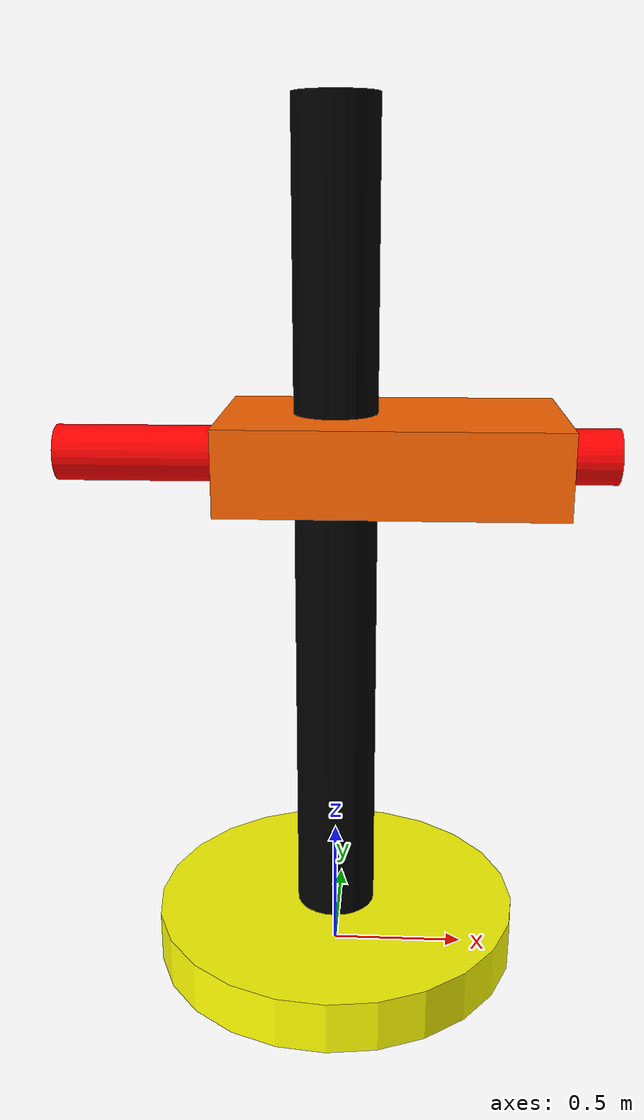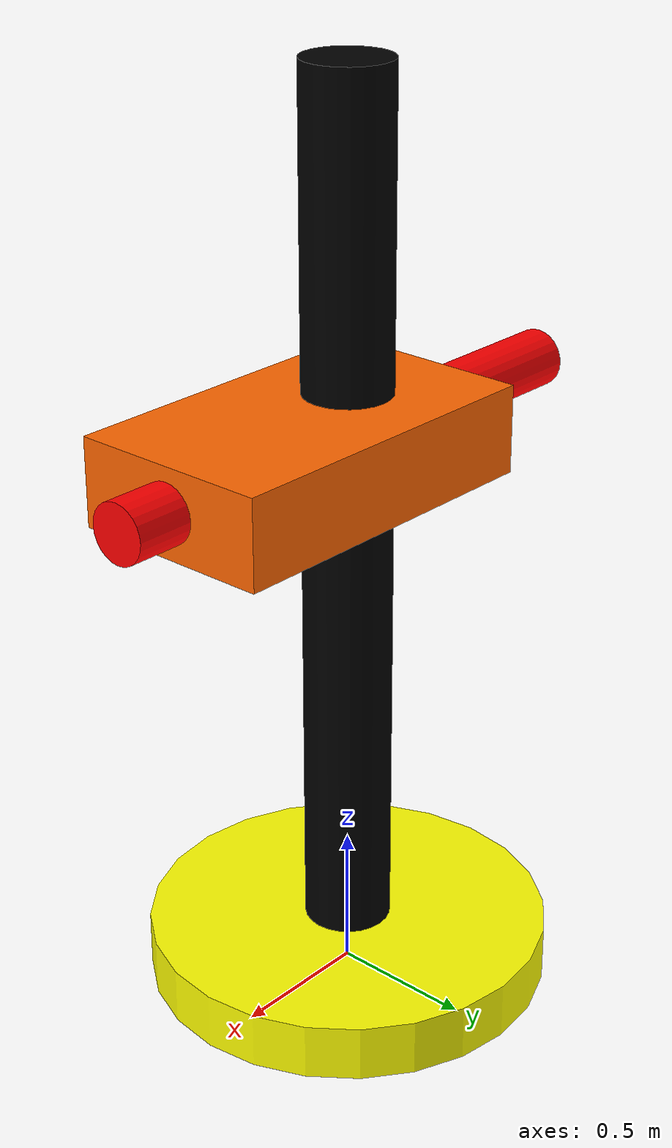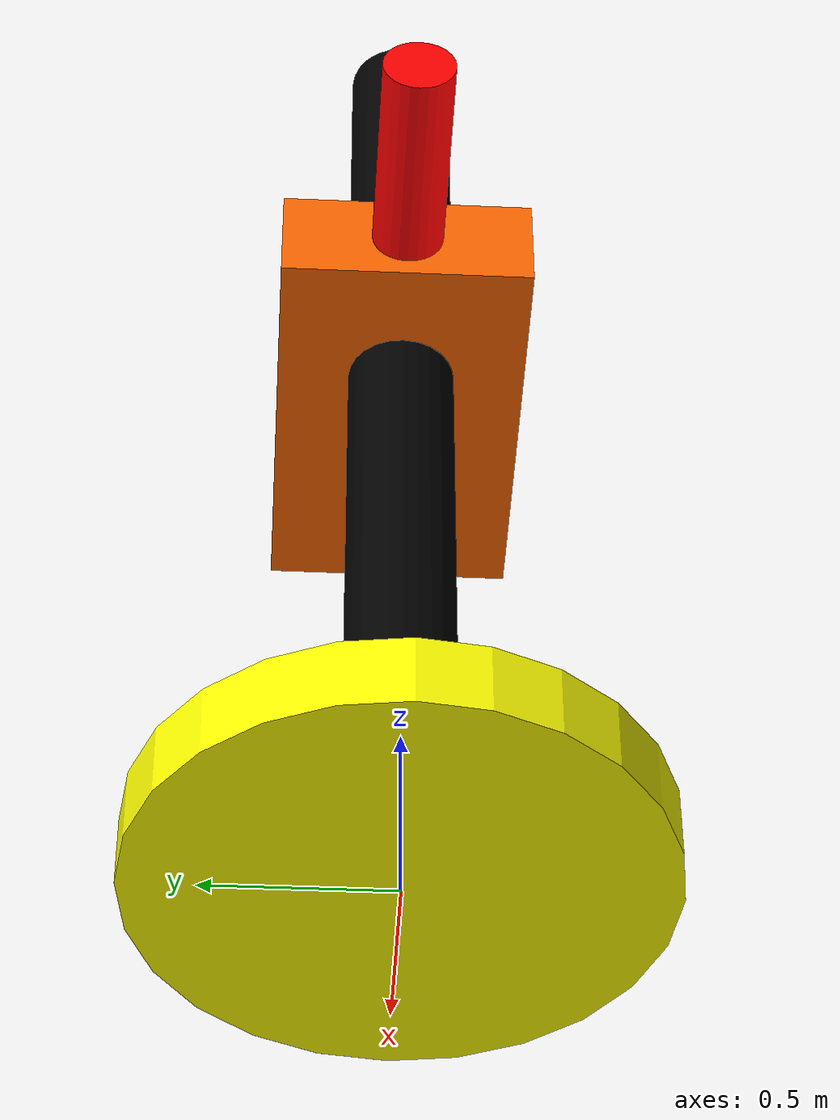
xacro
<?xml version="1.0"?>
<!-- Revolute-Revolute Manipulator -->
<robot name="rrbot" xmlns:xacro="http://www.ros.org/wiki/xacro">

  <!-- Import all Gazebo-customization elements, including Gazebo colors -->
  <xacro:include filename="$(find rrbot_description)/urdf/rrbot.gazebo" />

  <!-- Used for fixing robot to Gazebo 'base_link' -->
  <material name="black">
    <color rgba="0.0 0.0 0.0 1.0"/>
  </material>
  <material name="orange">
    <color rgba="1.0 0.4 0.0 1.0"/>
  </material>

  <link name="base">
    <visual>
      <geometry>
        <cylinder length="0.2" radius="0.7"/>
      </geometry>
      <origin rpy="0 0 0" xyz="0 0 0.1"/>
      <material name="yellow">
        <color rgba="1 1 0 1"/>
      </material>
    </visual>
    <collision>
      <geometry>
        <cylinder length="0.2" radius="0.7"/>
      </geometry>
      <origin rpy="0 0 0" xyz="0 0 0.1"/>
    </collision>
      <inertial>
        <mass value="1"/>
        <inertia ixx="1.0" ixy="0.0" ixz="0.0" iyy="1.0" iyz="0.0" izz="1.0"/>       </inertial>
    </link>

  <joint name="joint1" type="continuous">
    <parent link="base"/>
    <child link="link1"/>
    <origin xyz="0 0 1" rpy="0 0 0"/>
    <axis xyz="0 0 1"/>
    <limit effort="30" lower="-2.617" upper="2.617" velocity="1.571"/>
  </joint>

  <link name="link1">
    <collision>
      <origin xyz="0 0 0.7" rpy="0 0 0"/>
      <geometry>
        <cylinder length="3" radius="0.07"/>
      </geometry>
    </collision>
    <visual>
    <origin xyz="0 0 0.7" rpy="0 0 0"/>
      <geometry>
        <cylinder length="3" radius="0.15"/>
      </geometry>
      <material name="black"/>
    </visual>
    <inertial>
      <origin xyz="0 0 0" rpy="0 0 0"/>
      <mass value="1"/>
      <inertia ixx="1.0" ixy="0.0" ixz="0.0" iyy="1.0" iyz="0.0" izz="1.0"/>
    </inertial>
  </link>

  <joint name="fixed" type="fixed">
    <parent link="link1"/>
    <child link="link2"/>
  </joint>

  <link name="link2">
    <collision>
      <origin xyz="0.2 0 1" rpy="0 0 0"/>
      <geometry>
        <box size="1.2 0.7 0.3"/>
      </geometry>
    </collision>
    <visual>
      <origin xyz="0.2 0 1" rpy="0 0 0"/>
      <geometry>
        <box size="1.2 0.7 0.3"/>
      </geometry>
      <material name="orange"/>
    </visual>
    <inertial>
      <origin xyz="0 0 0" rpy="0 0 0"/>
      <mass value="1"/>
      <inertia ixx="1.0" ixy="0.0" ixz="0.0" iyy="1.0" iyz="0.0" izz="1.0"/>
    </inertial>
  </link>

  <joint name="joint2" type="prismatic">
    <parent link="link2"/>
    <child link="link3"/>
    <origin xyz="0 0 0" rpy="0 0 0"/>
    <axis xyz="1 0 0"/>
    <limit effort="30" lower="-1.317" upper="1.687" velocity="1.571"/>
  </joint>

  <link name="link3">
    <collision>
      <origin xyz="0 0 1" rpy="0 1.57 0"/>
      <geometry>
        <cylinder length="2" radius="0.1"/>
      </geometry>
    </collision>
    <visual>
      <origin xyz="0 0 1" rpy= "0 1.57 0"/>
      <geometry>
        <cylinder length="2" radius="0.1"/>
      </geometry>
      <material name="red">
          <color rgba="1 0 0 1"/>
      </material>
    </visual>
    <inertial>
      <origin xyz="0 0 0" rpy="0 0 0"/>
      <mass value="1"/>
      <inertia ixx="1.0" ixy="0.0" ixz="0.0" iyy="1.0" iyz="0.0" izz="1.0"/>
    </inertial>
  </link>

  <transmission name="tran1">
    <type>transmission_interface/SimpleTransmission</type>
    <joint name="joint1">
      <hardwareInterface>hardware_interface/EffortJointInterface</hardwareInterface>
    </joint>
    <actuator name="motor1">
      <hardwareInterface>hardware_interface/EffortJointInterface</hardwareInterface>
      <mechanicalReduction>1</mechanicalReduction>
    </actuator>
  </transmission>

  <transmission name="tran2">
    <type>transmission_interface/SimpleTransmission</type>
    <joint name="joint2">
      <hardwareInterface>hardware_interface/EffortJointInterface</hardwareInterface>
    </joint>
    <actuator name="motor2">
      <hardwareInterface>hardware_interface/EffortJointInterface</hardwareInterface>
      <mechanicalReduction>1</mechanicalReduction>
    </actuator>
  </transmission>

</robot>
